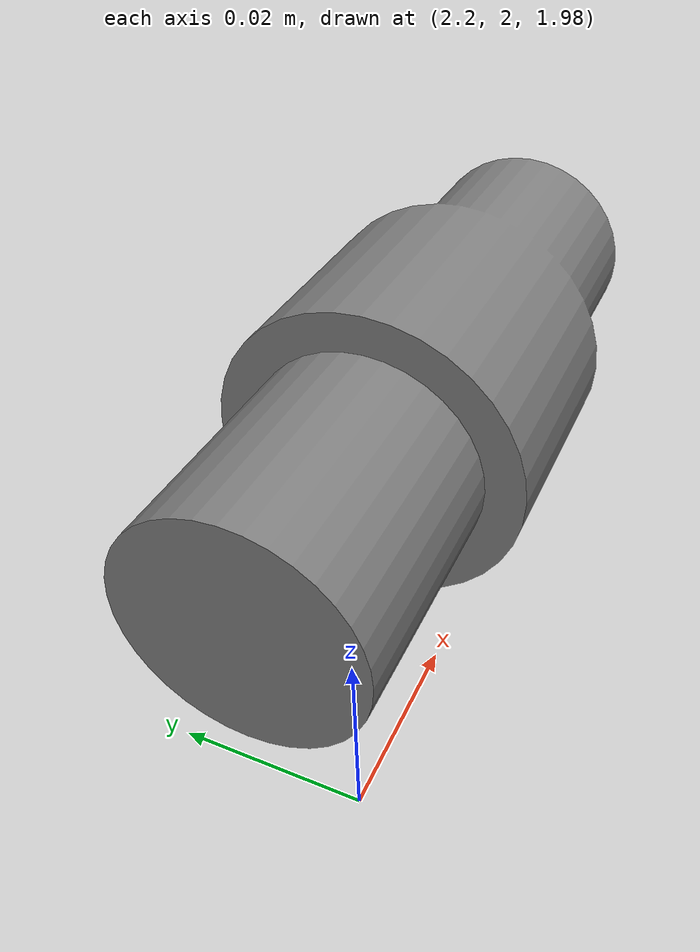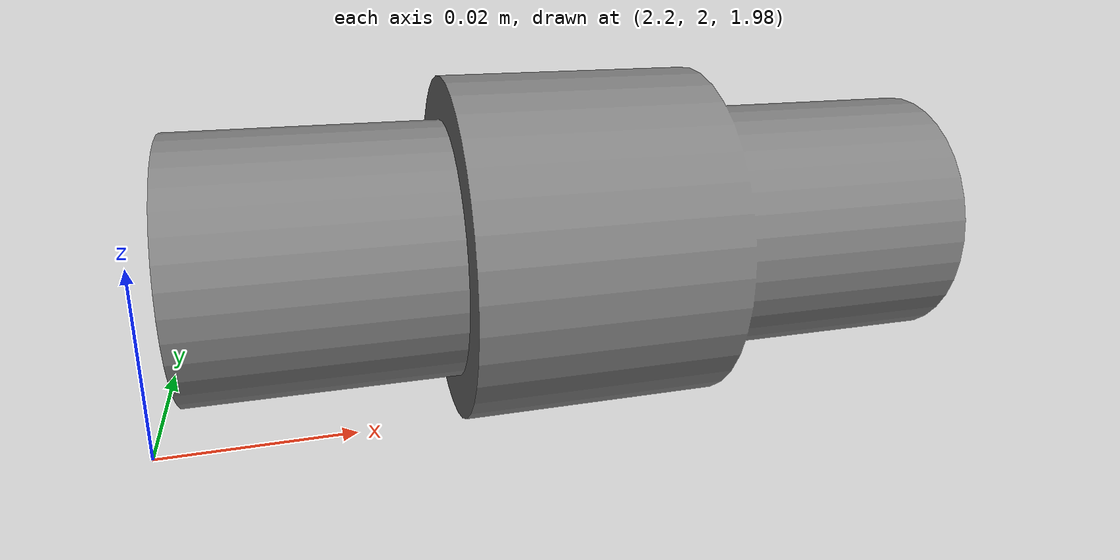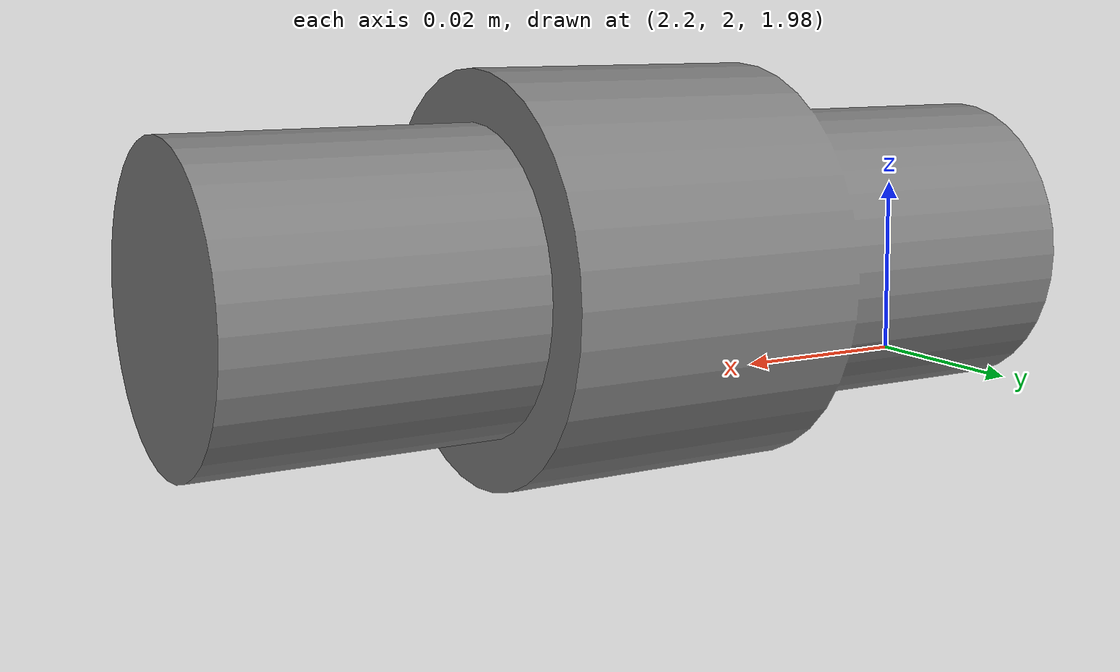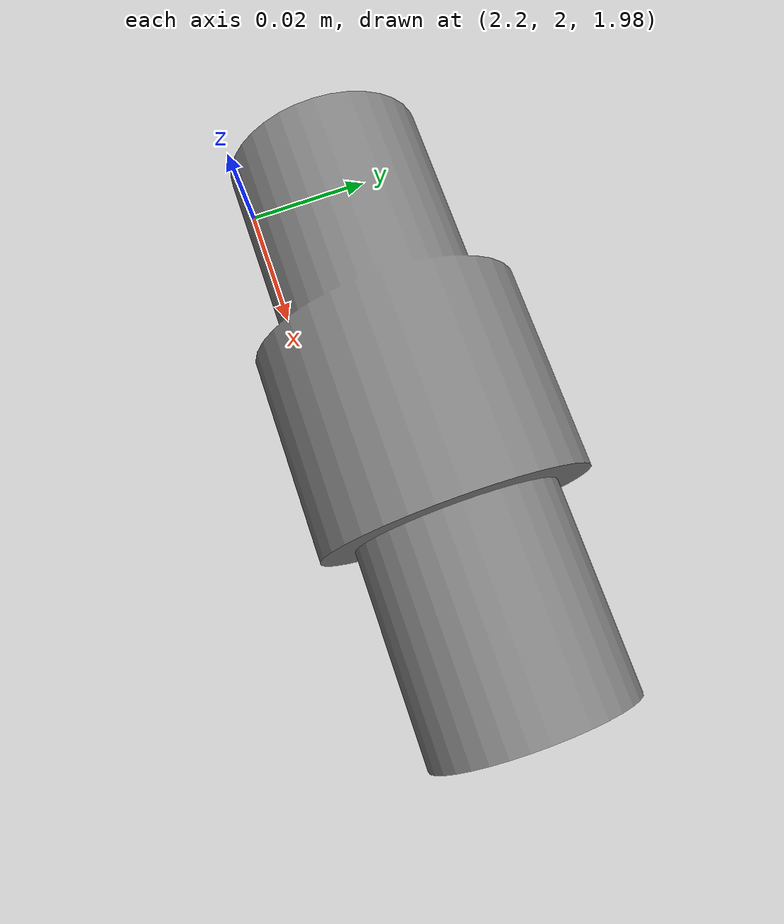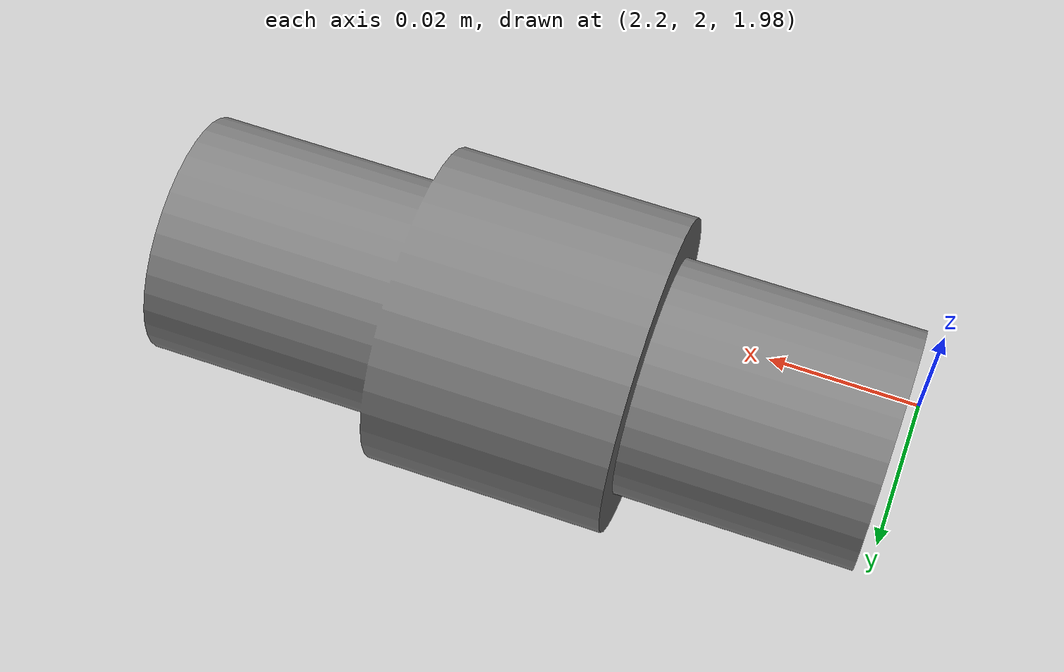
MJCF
<mujoco model="BolzenKlein-2">
  <asset>
    <mesh
      file="../../../../../assets/cranfield_assembly_benchmark/assets/BolzenKlein-2/BolzenKlein-2.obj"
      scale="0.001 0.001 0.001">
      <plugin instance="sdf" />
    </mesh>
  </asset>
  <worldbody>
    <body name="BolzenKlein-2" pos="2 2 2">
      <freejoint />
      <geom type="mesh" mesh="BolzenKlein-2" size="0.01">
        <plugin instance="sdf" />
      </geom>
    </body>
  </worldbody>
</mujoco>
